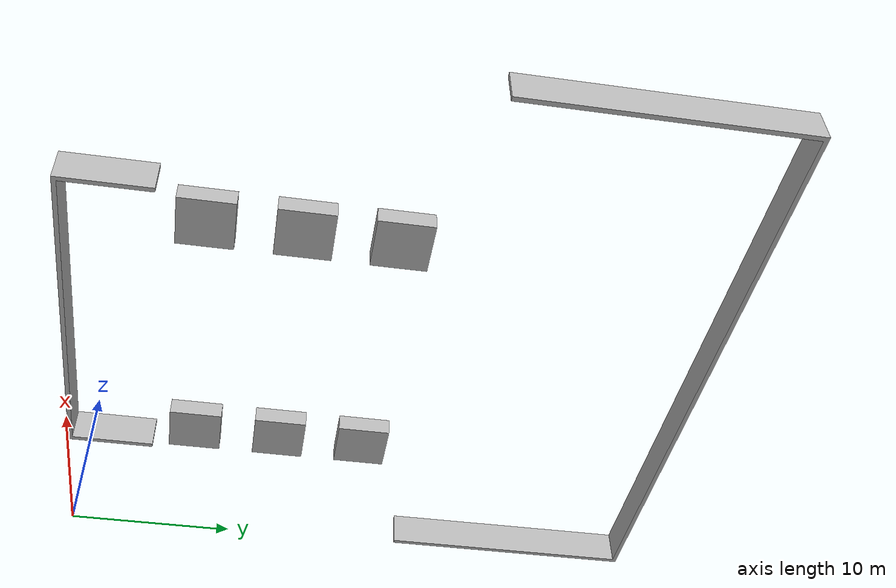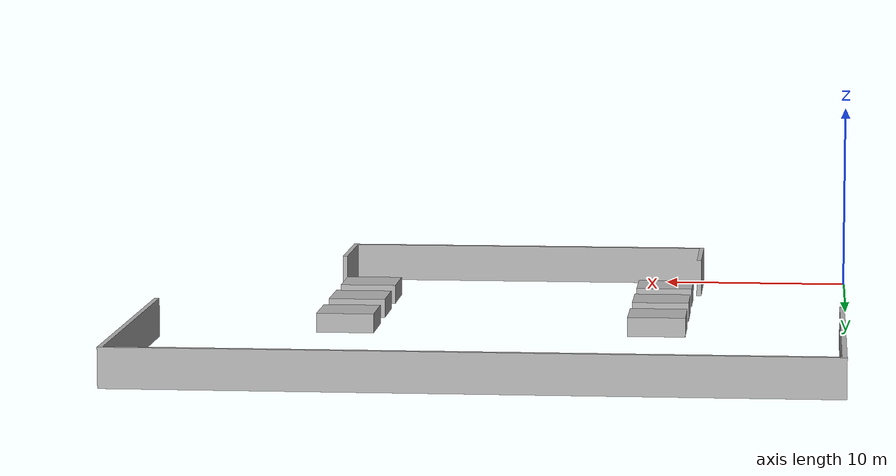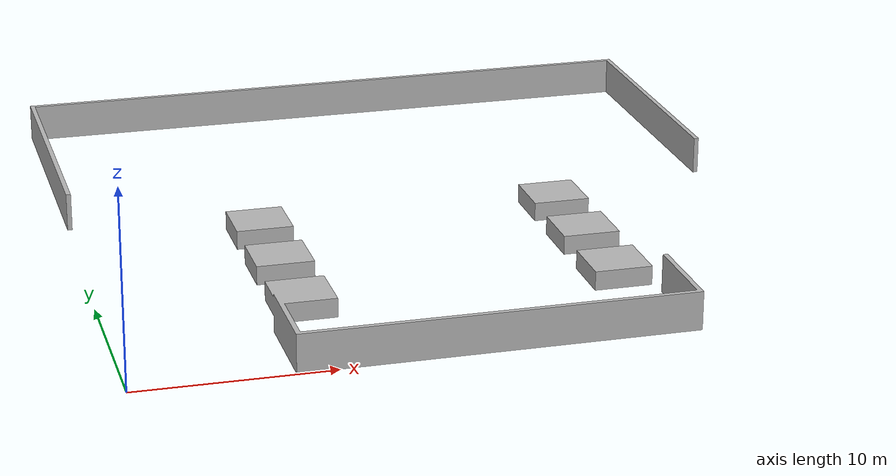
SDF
<?xml version="1.0" ?>
<sdf version="1.6">
  <model name="station">
    <static>1</static>
  <link name="link">
  <pose>0 0 0 0 0 0</pose>
    <inertial>
          <pose>0 0 0 0 0 0</pose>
          <mass>500</mass>
    </inertial>
    <collision name="collision">
      <pose>0 0 0 0 0 0</pose>
        <geometry>
          <mesh>
            <scale> 0.001 0.001 0.001 </scale>
            <uri>model://Factory/meshes/Factory.STL</uri>
          </mesh>
        </geometry>
    </collision>
    <visual name="visual">
      <geometry>
        <mesh>
          <scale> 0.001 0.001 0.001 </scale>
          <uri>model://Factory/meshes/Factory.STL</uri>
        </mesh>
      </geometry>
    </visual>
  </link>

  </model>
</sdf>
